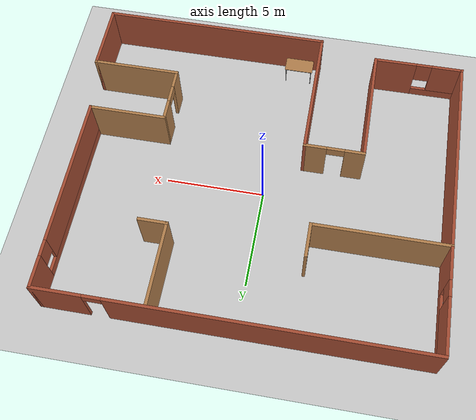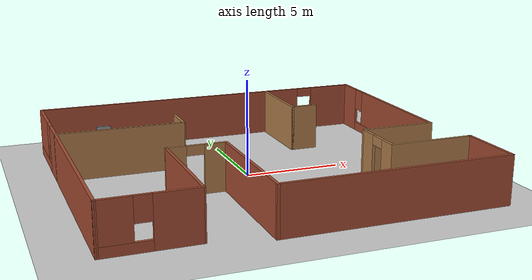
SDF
<sdf version="1.6">
 <world name="default">
  <model name="ground_plane">
   <static>1</static>
   <link name="link">
    <collision name="collision">
     <geometry><plane><normal>0 0 1</normal><size>100 100</size></plane></geometry>
     <surface><friction><ode><mu>100</mu><mu2>50</mu2></ode></friction></surface>
    </collision>
    <visual name="visual">
     <cast_shadows>0</cast_shadows>
     <geometry><plane><normal>0 0 1</normal><size>100 100</size></plane></geometry>
     <material>
      <script><uri>file://media/materials/scripts/gazebo.material</uri><name>Gazebo/Grey</name></script>
     </material>
    </visual>
   </link>
  </model>
  <model name="newbuilding">
   <pose>0.26768 -0.427306 0 0 -0 0</pose>
   <link name="Wall_10">
    <pose>-9.5495 0.35 0 0 -0 1.5708</pose>
    <visual name="Wall_10_Visual_0">
     <pose>-1.81434 0 1.25 0 -0 0</pose>
     <geometry><box><size>11.8713 0.15 2.5</size></box></geometry>
     <material>
      <script><uri>file://media/materials/scripts/gazebo.material</uri><name>Gazebo/Bricks</name></script>
      <ambient>1 1 1 1</ambient>
     </material>
     <meta><layer>0</layer></meta>
    </visual>
    <collision name="Wall_10_Collision_0">
     <geometry><box><size>11.8713 0.15 2.5</size></box></geometry>
     <pose>-1.81434 0 1.25 0 -0 0</pose>
    </collision>
    <visual name="Wall_10_Visual_1">
     <pose>5.93566 0 0.25 0 -0 0</pose>
     <geometry><box><size>3.62868 0.15 0.5</size></box></geometry>
     <material>
      <script><uri>file://media/materials/scripts/gazebo.material</uri><name>Gazebo/Bricks</name></script>
      <ambient>1 1 1 1</ambient>
     </material>
     <meta><layer>0</layer></meta>
    </visual>
    <collision name="Wall_10_Collision_1">
     <geometry><box><size>3.62868 0.15 0.5</size></box></geometry>
     <pose>5.93566 0 0.25 0 -0 0</pose>
    </collision>
    <visual name="Wall_10_Visual_2">
     <pose>6.33566 0 1.5 0 -0 0</pose>
     <geometry><box><size>2.82868 0.15 2</size></box></geometry>
     <material>
      <script><uri>file://media/materials/scripts/gazebo.material</uri><name>Gazebo/Bricks</name></script>
      <ambient>1 1 1 1</ambient>
     </material>
     <meta><layer>0</layer></meta>
    </visual>
    <collision name="Wall_10_Collision_2">
     <geometry><box><size>2.82868 0.15 2</size></box></geometry>
     <pose>6.33566 0 1.5 0 -0 0</pose>
    </collision>
    <visual name="Wall_10_Visual_3">
     <pose>4.52132 0 1.9 0 -0 0</pose>
     <geometry><box><size>0.8 0.15 1.2</size></box></geometry>
     <material>
      <script><uri>file://media/materials/scripts/gazebo.material</uri><name>Gazebo/Bricks</name></script>
      <ambient>1 1 1 1</ambient>
     </material>
     <meta><layer>0</layer></meta>
    </visual>
    <collision name="Wall_10_Collision_3">
     <geometry><box><size>0.8 0.15 1.2</size></box></geometry>
     <pose>4.52132 0 1.9 0 -0 0</pose>
    </collision>
   </link>
   <link name="Wall_11">
    <pose>-0.249504 8.025 0 0 -0 0</pose>
    <visual name="Wall_11_Visual_0">
     <pose>-1.6974 0 1.25 0 -0 0</pose>
     <geometry><box><size>15.3552 0.15 2.5</size></box></geometry>
     <material>
      <script><uri>file://media/materials/scripts/gazebo.material</uri><name>Gazebo/Bricks</name></script>
      <ambient>1 1 1 1</ambient>
     </material>
     <meta><layer>0</layer></meta>
    </visual>
    <collision name="Wall_11_Collision_0">
     <geometry><box><size>15.3552 0.15 2.5</size></box></geometry>
     <pose>-1.6974 0 1.25 0 -0 0</pose>
    </collision>
    <visual name="Wall_11_Visual_1">
     <pose>8.1276 0 1.25 0 -0 0</pose>
     <geometry><box><size>2.49479 0.15 2.5</size></box></geometry>
     <material>
      <script><uri>file://media/materials/scripts/gazebo.material</uri><name>Gazebo/Bricks</name></script>
      <ambient>1 1 1 1</ambient>
     </material>
     <meta><layer>0</layer></meta>
    </visual>
    <collision name="Wall_11_Collision_1">
     <geometry><box><size>2.49479 0.15 2.5</size></box></geometry>
     <pose>8.1276 0 1.25 0 -0 0</pose>
    </collision>
    <visual name="Wall_11_Visual_2">
     <pose>6.4302 0 2.25 0 -0 0</pose>
     <geometry><box><size>0.9 0.15 0.5</size></box></geometry>
     <material>
      <script><uri>file://media/materials/scripts/gazebo.material</uri><name>Gazebo/Bricks</name></script>
      <ambient>1 1 1 1</ambient>
     </material>
     <meta><layer>0</layer></meta>
    </visual>
    <collision name="Wall_11_Collision_2">
     <geometry><box><size>0.9 0.15 0.5</size></box></geometry>
     <pose>6.4302 0 2.25 0 -0 0</pose>
    </collision>
   </link>
   <link name="Wall_12">
    <pose>9.0505 3.1 0 0 0 -1.5708</pose>
    <visual name="Wall_12_Visual_0">
     <pose>-4.20129 0 1.25 0 -0 0</pose>
     <geometry><box><size>1.59742 0.15 2.5</size></box></geometry>
     <material>
      <script><uri>file://media/materials/scripts/gazebo.material</uri><name>Gazebo/Bricks</name></script>
      <ambient>1 1 1 1</ambient>
     </material>
     <meta><layer>0</layer></meta>
    </visual>
    <collision name="Wall_12_Collision_0">
     <geometry><box><size>1.59742 0.15 2.5</size></box></geometry>
     <pose>-4.20129 0 1.25 0 -0 0</pose>
    </collision>
    <visual name="Wall_12_Visual_1">
     <pose>0.798711 0 0.25 0 -0 0</pose>
     <geometry><box><size>8.40258 0.15 0.5</size></box></geometry>
     <material>
      <script><uri>file://media/materials/scripts/gazebo.material</uri><name>Gazebo/Bricks</name></script>
      <ambient>1 1 1 1</ambient>
     </material>
     <meta><layer>0</layer></meta>
    </visual>
    <collision name="Wall_12_Collision_1">
     <geometry><box><size>8.40258 0.15 0.5</size></box></geometry>
     <pose>0.798711 0 0.25 0 -0 0</pose>
    </collision>
    <visual name="Wall_12_Visual_2">
     <pose>1.19871 0 1.5 0 -0 0</pose>
     <geometry><box><size>7.60258 0.15 2</size></box></geometry>
     <material>
      <script><uri>file://media/materials/scripts/gazebo.material</uri><name>Gazebo/Bricks</name></script>
      <ambient>1 1 1 1</ambient>
     </material>
     <meta><layer>0</layer></meta>
    </visual>
    <collision name="Wall_12_Collision_2">
     <geometry><box><size>7.60258 0.15 2</size></box></geometry>
     <pose>1.19871 0 1.5 0 -0 0</pose>
    </collision>
    <visual name="Wall_12_Visual_3">
     <pose>-3.00258 0 1.9 0 -0 0</pose>
     <geometry><box><size>0.8 0.15 1.2</size></box></geometry>
     <material>
      <script><uri>file://media/materials/scripts/gazebo.material</uri><name>Gazebo/Bricks</name></script>
      <ambient>1 1 1 1</ambient>
     </material>
     <meta><layer>0</layer></meta>
    </visual>
    <collision name="Wall_12_Collision_3">
     <geometry><box><size>0.8 0.15 1.2</size></box></geometry>
     <pose>-3.00258 0 1.9 0 -0 0</pose>
    </collision>
   </link>
   <link name="Wall_15">
    <collision name="Wall_15_Collision">
     <geometry><box><size>4 0.15 2.5</size></box></geometry>
     <pose>0 0 1.25 0 -0 0</pose>
    </collision>
    <visual name="Wall_15_Visual">
     <pose>0 0 1.25 0 -0 0</pose>
     <geometry><box><size>4 0.15 2.5</size></box></geometry>
     <material>
      <script><uri>file://media/materials/scripts/gazebo.material</uri><name>Gazebo/Wood</name></script>
      <ambient>1 1 1 1</ambient>
     </material>
     <meta><layer>0</layer></meta>
    </visual>
    <pose>7.1255 -1.825 0 0 -0 3.14159</pose>
   </link>
   <link name="Wall_16">
    <pose>5.2005 -3.25 0 0 0 -1.5708</pose>
    <visual name="Wall_16_Visual_0">
     <pose>-0.944828 0 1.25 0 -0 0</pose>
     <geometry><box><size>1.11034 0.15 2.5</size></box></geometry>
     <material>
      <script><uri>file://media/materials/scripts/gazebo.material</uri><name>Gazebo/Wood</name></script>
      <ambient>1 1 1 1</ambient>
     </material>
     <meta><layer>0</layer></meta>
    </visual>
    <collision name="Wall_16_Collision_0">
     <geometry><box><size>1.11034 0.15 2.5</size></box></geometry>
     <pose>-0.944828 0 1.25 0 -0 0</pose>
    </collision>
    <visual name="Wall_16_Visual_1">
     <pose>1.00517 0 1.25 0 -0 0</pose>
     <geometry><box><size>0.989656 0.15 2.5</size></box></geometry>
     <material>
      <script><uri>file://media/materials/scripts/gazebo.material</uri><name>Gazebo/Wood</name></script>
      <ambient>1 1 1 1</ambient>
     </material>
     <meta><layer>0</layer></meta>
    </visual>
    <collision name="Wall_16_Collision_1">
     <geometry><box><size>0.989656 0.15 2.5</size></box></geometry>
     <pose>1.00517 0 1.25 0 -0 0</pose>
    </collision>
    <visual name="Wall_16_Visual_2">
     <pose>0.060344 0 2.25 0 -0 0</pose>
     <geometry><box><size>0.9 0.15 0.5</size></box></geometry>
     <material>
      <script><uri>file://media/materials/scripts/gazebo.material</uri><name>Gazebo/Wood</name></script>
      <ambient>1 1 1 1</ambient>
     </material>
     <meta><layer>0</layer></meta>
    </visual>
    <collision name="Wall_16_Collision_2">
     <geometry><box><size>0.9 0.15 0.5</size></box></geometry>
     <pose>0.060344 0 2.25 0 -0 0</pose>
    </collision>
   </link>
   <link name="Wall_17">
    <collision name="Wall_17_Collision">
     <geometry><box><size>4.5 0.15 2.5</size></box></geometry>
     <pose>0 0 1.25 0 -0 0</pose>
    </collision>
    <visual name="Wall_17_Visual">
     <pose>0 0 1.25 0 -0 0</pose>
     <geometry><box><size>4.5 0.15 2.5</size></box></geometry>
     <material>
      <script><uri>file://media/materials/scripts/gazebo.material</uri><name>Gazebo/Wood</name></script>
      <ambient>1 1 1 1</ambient>
     </material>
     <meta><layer>0</layer></meta>
    </visual>
    <pose>7.3755 -4.675 0 0 -0 0</pose>
   </link>
   <link name="Wall_18">
    <collision name="Wall_18_Collision">
     <geometry><box><size>3.5 0.15 2.5</size></box></geometry>
     <pose>0 0 1.25 0 -0 0</pose>
    </collision>
    <visual name="Wall_18_Visual">
     <pose>0 0 1.25 0 -0 0</pose>
     <geometry><box><size>3.5 0.15 2.5</size></box></geometry>
     <material>
      <script><uri>file://media/materials/scripts/gazebo.material</uri><name>Gazebo/Bricks</name></script>
      <ambient>1 1 1 1</ambient>
     </material>
     <meta><layer>0</layer></meta>
    </visual>
    <pose>9.5505 -6.35 0 0 0 -1.5708</pose>
   </link>
   <link name="Wall_19">
    <collision name="Wall_19_Collision">
     <geometry><box><size>11.75 0.15 2.5</size></box></geometry>
     <pose>0 0 1.25 0 -0 0</pose>
    </collision>
    <visual name="Wall_19_Visual">
     <pose>0 0 1.25 0 -0 0</pose>
     <geometry><box><size>11.75 0.15 2.5</size></box></geometry>
     <material>
      <script><uri>file://media/materials/scripts/gazebo.material</uri><name>Gazebo/Bricks</name></script>
      <ambient>1 1 1 1</ambient>
     </material>
     <meta><layer>0</layer></meta>
    </visual>
    <pose>3.7505 -8.025 0 0 -0 3.14159</pose>
   </link>
   <link name="Wall_20">
    <collision name="Wall_20_Collision">
     <geometry><box><size>6.75 0.15 2.5</size></box></geometry>
     <pose>0 0 1.25 0 -0 0</pose>
    </collision>
    <visual name="Wall_20_Visual">
     <pose>0 0 1.25 0 -0 0</pose>
     <geometry><box><size>6.75 0.15 2.5</size></box></geometry>
     <material>
      <script><uri>file://media/materials/scripts/gazebo.material</uri><name>Gazebo/Bricks</name></script>
      <ambient>1 1 1 1</ambient>
     </material>
     <meta><layer>0</layer></meta>
    </visual>
    <pose>-2.0495 -4.725 0 0 -0 1.5708</pose>
   </link>
   <link name="Wall_21">
    <pose>-3.53778 -1.425 0 0 -0 3.14159</pose>
    <visual name="Wall_21_Visual_0">
     <pose>-0.971603 0 1.25 0 -0 0</pose>
     <geometry><box><size>1.18398 0.15 2.5</size></box></geometry>
     <material>
      <script><uri>file://media/materials/scripts/gazebo.material</uri><name>Gazebo/Wood</name></script>
      <ambient>1 1 1 1</ambient>
     </material>
     <meta><layer>0</layer></meta>
    </visual>
    <collision name="Wall_21_Collision_0">
     <geometry><box><size>1.18398 0.15 2.5</size></box></geometry>
     <pose>-0.971603 0 1.25 0 -0 0</pose>
    </collision>
    <visual name="Wall_21_Visual_1">
     <pose>1.04199 0 1.25 0 -0 0</pose>
     <geometry><box><size>1.04321 0.15 2.5</size></box></geometry>
     <material>
      <script><uri>file://media/materials/scripts/gazebo.material</uri><name>Gazebo/Wood</name></script>
      <ambient>1 1 1 1</ambient>
     </material>
     <meta><layer>0</layer></meta>
    </visual>
    <collision name="Wall_21_Collision_1">
     <geometry><box><size>1.04321 0.15 2.5</size></box></geometry>
     <pose>1.04199 0 1.25 0 -0 0</pose>
    </collision>
    <visual name="Wall_21_Visual_2">
     <pose>0.070388 0 2.25 0 -0 0</pose>
     <geometry><box><size>0.9 0.15 0.5</size></box></geometry>
     <material>
      <script><uri>file://media/materials/scripts/gazebo.material</uri><name>Gazebo/Wood</name></script>
      <ambient>1 1 1 1</ambient>
     </material>
     <meta><layer>0</layer></meta>
    </visual>
    <collision name="Wall_21_Collision_2">
     <geometry><box><size>0.9 0.15 0.5</size></box></geometry>
     <pose>0.070388 0 2.25 0 -0 0</pose>
    </collision>
   </link>
   <link name="Wall_22">
    <collision name="Wall_22_Collision">
     <geometry><box><size>6 0.15 2.5</size></box></geometry>
     <pose>0 0 1.25 0 -0 0</pose>
    </collision>
    <visual name="Wall_22_Visual">
     <pose>0 0 1.25 0 -0 0</pose>
     <geometry><box><size>6 0.15 2.5</size></box></geometry>
     <material>
      <script><uri>file://media/materials/scripts/gazebo.material</uri><name>Gazebo/Bricks</name></script>
      <ambient>1 1 1 1</ambient>
     </material>
     <meta><layer>0</layer></meta>
    </visual>
    <pose>-5.02606 -4.38059 0 0 0 -1.5708</pose>
   </link>
   <link name="Wall_26">
    <pose>-7.28778 -7.31529 0 0 0 -3.1373</pose>
    <visual name="Wall_26_Visual_0">
     <pose>-1.21852 0 1.25 0 -0 0</pose>
     <geometry><box><size>2.23644 0.15 2.5</size></box></geometry>
     <material>
      <script><uri>file://media/materials/scripts/gazebo.material</uri><name>Gazebo/Bricks</name></script>
      <ambient>1 1 1 1</ambient>
     </material>
     <meta><layer>0</layer></meta>
    </visual>
    <collision name="Wall_26_Collision_0">
     <geometry><box><size>2.23644 0.15 2.5</size></box></geometry>
     <pose>-1.21852 0 1.25 0 -0 0</pose>
    </collision>
    <visual name="Wall_26_Visual_1">
     <pose>1.11822 0 0.25 0 -0 0</pose>
     <geometry><box><size>2.43704 0.15 0.5</size></box></geometry>
     <material>
      <script><uri>file://media/materials/scripts/gazebo.material</uri><name>Gazebo/Bricks</name></script>
      <ambient>1 1 1 1</ambient>
     </material>
     <meta><layer>0</layer></meta>
    </visual>
    <collision name="Wall_26_Collision_1">
     <geometry><box><size>2.43704 0.15 0.5</size></box></geometry>
     <pose>1.11822 0 0.25 0 -0 0</pose>
    </collision>
    <visual name="Wall_26_Visual_2">
     <pose>1.51822 0 1.5 0 -0 0</pose>
     <geometry><box><size>1.63704 0.15 2</size></box></geometry>
     <material>
      <script><uri>file://media/materials/scripts/gazebo.material</uri><name>Gazebo/Bricks</name></script>
      <ambient>1 1 1 1</ambient>
     </material>
     <meta><layer>0</layer></meta>
    </visual>
    <collision name="Wall_26_Collision_2">
     <geometry><box><size>1.63704 0.15 2</size></box></geometry>
     <pose>1.51822 0 1.5 0 -0 0</pose>
    </collision>
    <visual name="Wall_26_Visual_3">
     <pose>0.299699 0 1.9 0 -0 0</pose>
     <geometry><box><size>0.8 0.15 1.2</size></box></geometry>
     <material>
      <script><uri>file://media/materials/scripts/gazebo.material</uri><name>Gazebo/Bricks</name></script>
      <ambient>1 1 1 1</ambient>
     </material>
     <meta><layer>0</layer></meta>
    </visual>
    <collision name="Wall_26_Collision_3">
     <geometry><box><size>0.8 0.15 1.2</size></box></geometry>
     <pose>0.299699 0 1.9 0 -0 0</pose>
    </collision>
   </link>
   <link name="Wall_28">
    <collision name="Wall_28_Collision">
     <geometry><box><size>6.75 0.15 2.5</size></box></geometry>
     <pose>0 0 1.25 0 -0 0</pose>
    </collision>
    <visual name="Wall_28_Visual">
     <pose>0 0 1.25 0 -0 0</pose>
     <geometry><box><size>6.75 0.15 2.5</size></box></geometry>
     <material>
      <script><uri>file://media/materials/scripts/gazebo.material</uri><name>Gazebo/Wood</name></script>
      <ambient>1 1 1 1</ambient>
     </material>
     <meta><layer>0</layer></meta>
    </visual>
    <pose>-6.2505 2.80829 0 0 -0 0</pose>
   </link>
   <link name="Wall_29">
    <collision name="Wall_29_Collision">
     <geometry><box><size>1.75 0.15 2.5</size></box></geometry>
     <pose>0 0 1.25 0 -0 0</pose>
    </collision>
    <visual name="Wall_29_Visual">
     <pose>0 0 1.25 0 -0 0</pose>
     <geometry><box><size>1.75 0.15 2.5</size></box></geometry>
     <material>
      <script><uri>file://media/materials/scripts/gazebo.material</uri><name>Gazebo/Wood</name></script>
      <ambient>1 1 1 1</ambient>
     </material>
     <meta><layer>0</layer></meta>
    </visual>
    <pose>-2.9505 3.60829 0 0 -0 1.5708</pose>
   </link>
   <link name="Wall_32">
    <collision name="Wall_32_Collision">
     <geometry><box><size>4.25 0.15 2.5</size></box></geometry>
     <pose>0 0 1.25 0 -0 0</pose>
    </collision>
    <visual name="Wall_32_Visual">
     <pose>0 0 1.25 0 -0 0</pose>
     <geometry><box><size>4.25 0.15 2.5</size></box></geometry>
     <material>
      <script><uri>file://media/materials/scripts/gazebo.material</uri><name>Gazebo/Wood</name></script>
      <ambient>1 1 1 1</ambient>
     </material>
     <meta><layer>0</layer></meta>
    </visual>
    <pose>3.70289 5.95804 0 0 0 -1.5708</pose>
   </link>
   <link name="Wall_33">
    <collision name="Wall_33_Collision">
     <geometry><box><size>1.5 0.15 2.5</size></box></geometry>
     <pose>0 0 1.25 0 -0 0</pose>
    </collision>
    <visual name="Wall_33_Visual">
     <pose>0 0 1.25 0 -0 0</pose>
     <geometry><box><size>1.5 0.15 2.5</size></box></geometry>
     <material>
      <script><uri>file://media/materials/scripts/gazebo.material</uri><name>Gazebo/Wood</name></script>
      <ambient>1 1 1 1</ambient>
     </material>
     <meta><layer>0</layer></meta>
    </visual>
    <pose>4.37789 3.90804 0 0 -0 0</pose>
   </link>
   <link name="Window_0">
    <collision name="Window_0_Collision">
     <geometry><box><size>0.8 0.17 0.8</size></box></geometry>
     <pose>0 0 0.4 0 -0 0</pose>
    </collision>
    <visual name="Window_0_Visual">
     <pose>0 0 0.4 0 -0 0</pose>
     <geometry><box><size>0.8 0.17 0.8</size></box></geometry>
     <material>
      <script><uri>file://media/materials/scripts/gazebo.material</uri><name>Gazebo/Grey</name></script>
     </material>
    </visual>
    <pose>-6.21558 7.8967 0.5 0 -0 0</pose>
   </link>
   <static>1</static>
  </model>
  <model name="table">
   <static>1</static>
   <link name="link">
    <collision name="surface">
     <pose>0 0 1 0 -0 0</pose>
     <geometry><box><size>1.5 0.8 0.03</size></box></geometry>
     <surface><friction><ode><mu>0.6</mu><mu2>0.6</mu2></ode></friction></surface>
    </collision>
    <visual name="visual1">
     <pose>0 0 1 0 -0 0</pose>
     <geometry><box><size>1.5 0.8 0.03</size></box></geometry>
     <material>
      <script><uri>file://media/materials/scripts/gazebo.material</uri><name>Gazebo/Wood</name></script>
     </material>
    </visual>
    <collision name="front_left_leg">
     <pose>0.68 0.38 0.5 0 -0 0</pose>
     <geometry><cylinder><radius>0.02</radius><length>1</length></cylinder></geometry>
    </collision>
    <visual name="front_left_leg">
     <pose>0.68 0.38 0.5 0 -0 0</pose>
     <geometry><cylinder><radius>0.02</radius><length>1</length></cylinder></geometry>
     <material>
      <script><uri>file://media/materials/scripts/gazebo.material</uri><name>Gazebo/Grey</name></script>
     </material>
    </visual>
    <collision name="front_right_leg">
     <pose>0.68 -0.38 0.5 0 -0 0</pose>
     <geometry><cylinder><radius>0.02</radius><length>1</length></cylinder></geometry>
    </collision>
    <visual name="front_right_leg">
     <pose>0.68 -0.38 0.5 0 -0 0</pose>
     <geometry><cylinder><radius>0.02</radius><length>1</length></cylinder></geometry>
     <material>
      <script><uri>file://media/materials/scripts/gazebo.material</uri><name>Gazebo/Grey</name></script>
     </material>
    </visual>
    <collision name="back_right_leg">
     <pose>-0.68 -0.38 0.5 0 -0 0</pose>
     <geometry><cylinder><radius>0.02</radius><length>1</length></cylinder></geometry>
    </collision>
    <visual name="back_right_leg">
     <pose>-0.68 -0.38 0.5 0 -0 0</pose>
     <geometry><cylinder><radius>0.02</radius><length>1</length></cylinder></geometry>
     <material>
      <script><uri>file://media/materials/scripts/gazebo.material</uri><name>Gazebo/Grey</name></script>
     </material>
    </visual>
    <collision name="back_left_leg">
     <pose>-0.68 0.38 0.5 0 -0 0</pose>
     <geometry><cylinder><radius>0.02</radius><length>1</length></cylinder></geometry>
    </collision>
    <visual name="back_left_leg">
     <pose>-0.68 0.38 0.5 0 -0 0</pose>
     <geometry><cylinder><radius>0.02</radius><length>1</length></cylinder></geometry>
     <material>
      <script><uri>file://media/materials/scripts/gazebo.material</uri><name>Gazebo/Grey</name></script>
     </material>
    </visual>
   </link>
   <pose>-0.714825 -7.78292 0 0 -0 0</pose>
  </model>
 </world>
</sdf>
